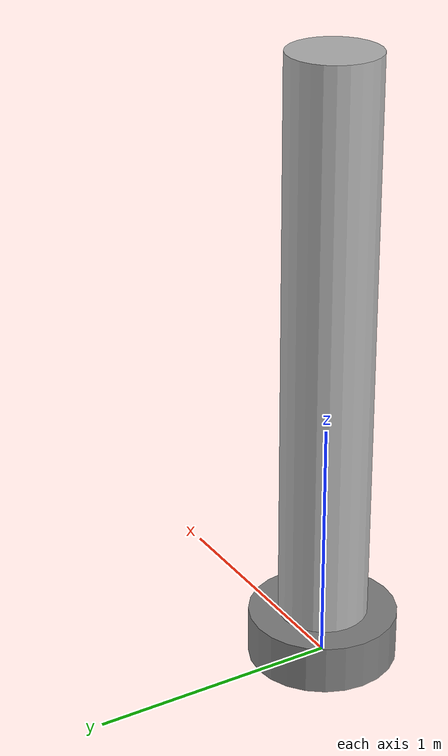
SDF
<?xml version="1.0" ?>
<sdf version="1.9">
  <model name="pillar">
    <static>true</static>
    <link name="link">
      <!-- Base -->
      <collision name="base_collision">
        <pose>0 0 0.1 0 0 0</pose>
        <geometry>
          <cylinder>
            <radius>0.3</radius>
            <length>0.2</length>
          </cylinder>
        </geometry>
      </collision>
      <visual name="base_visual">
        <pose>0 0 0.1 0 0 0</pose>
        <geometry>
          <cylinder>
            <radius>0.3</radius>
            <length>0.2</length>
          </cylinder>
        </geometry>
        <material>
          <ambient>0.5 0.5 0.5 1</ambient>
          <diffuse>0.5 0.5 0.5 1</diffuse>
        </material>
      </visual>

      <!-- Pillar -->
      <collision name="pillar_collision">
        <pose>0 0 1.35 0 0 0</pose>
        <geometry>
          <cylinder>
            <radius>0.18</radius>
            <length>2.3</length>
          </cylinder>
        </geometry>
      </collision>
      <visual name="pillar_visual">
        <pose>0 0 1.35 0 0 0</pose>
        <geometry>
          <cylinder>
            <radius>0.18</radius>
            <length>2.3</length>
          </cylinder>
        </geometry>
        <material>
          <ambient>0.7 0.7 0.7 1</ambient>
          <diffuse>0.7 0.7 0.7 1</diffuse>
        </material>
      </visual>
    </link>
  </model>
</sdf>
